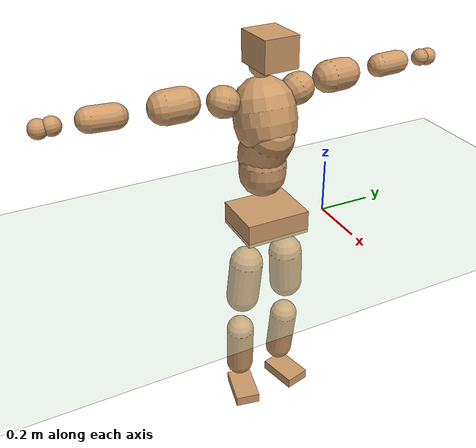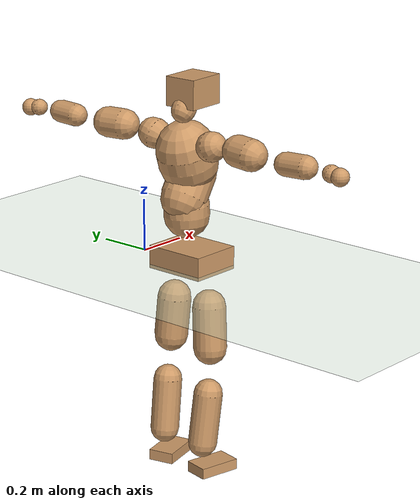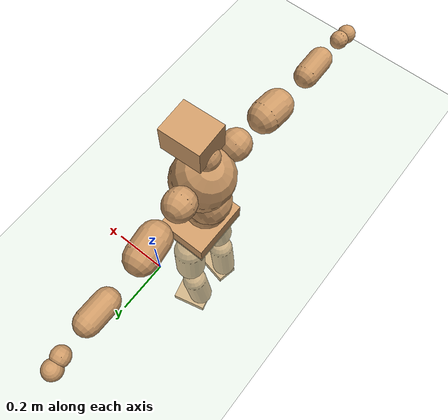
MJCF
<mujoco model="humanoid">
  <compiler coordinate="local" angle="radian"/>
  <default>
    <joint damping="0.0" armature="0.01" stiffness="0.0" limited="true"/>
    <geom conaffinity="1" condim="3" contype="7" margin="0.001" rgba="0.8 0.6 .4 1"/>
  </default>
  <asset>
    <texture type="skybox" builtin="gradient" rgb1=".4 .5 .6" rgb2="0 0 0" width="100" height="100"/>
    <texture builtin="flat" height="1278" mark="cross" markrgb="1 1 1" name="texgeom" random="0.01" rgb1="0.8 0.6 0.4" rgb2="0.8 0.6 0.4" type="cube" width="127"/>
    <texture builtin="checker" height="100" name="texplane" rgb1="0 0 0" rgb2="0.8 0.8 0.8" type="2d" width="100"/>
    <material name="MatPlane" reflectance="0.5" shininess="1" specular="1" texrepeat="60 60" texture="texplane"/>
    <material name="geom" texture="texgeom" texuniform="true"/>
  </asset>
  <worldbody>
    <light cutoff="100" diffuse="1 1 1" dir="-0 0 -1.3" directional="true" exponent="1" pos="0 0 1.3" specular=".1 .1 .1"/>
    <geom conaffinity="1" condim="3" name="floor" pos="0 0 0" rgba="0.8 0.9 0.8 1" size="100 100 .2" type="plane" material="MatPlane"/>
    <body name="Pelvis" pos="-0.0015 -0.2408 0.0412">
      <freejoint name="Pelvis"/>
      <geom type="box" contype="1" conaffinity="1" density="5359.375368" pos="-0.0050 0.0000 -0.0132" size="0.0998 0.1198 0.0435" quat="1.0000 0.0000 0.0000 -0.0013" name="Pelvis"/>
      <body name="L_Hip" pos="-0.0001 0.0784 -0.0944">
        <joint name="L_Hip_x" type="hinge" pos="0 0 0" axis="1 0 0" stiffness="1600" damping="160" armature="0.02" range="-180.0000 180.0000"/>
        <joint name="L_Hip_y" type="hinge" pos="0 0 0" axis="0 1 0" stiffness="1600" damping="160" armature="0.02" range="-180.0000 180.0000"/>
        <joint name="L_Hip_z" type="hinge" pos="0 0 0" axis="0 0 1" stiffness="1600" damping="160" armature="0.02" range="-180.0000 180.0000"/>
        <geom type="capsule" contype="1" conaffinity="1" density="2040.816327" size="0.0632" fromto="-0.0049 0.0061 -0.0929 -0.0128 0.0160 -0.2443" name="L_Hip"/>
        <body name="L_Knee" pos="-0.0177 0.0221 -0.3372">
          <joint name="L_Knee_x" type="hinge" pos="0 0 0" axis="1 0 0" stiffness="1600" damping="160" armature="0.02" range="-180.0000 180.0000"/>
          <joint name="L_Knee_y" type="hinge" pos="0 0 0" axis="0 1 0" stiffness="1600" damping="160" armature="0.02" range="-180.0000 180.0000"/>
          <joint name="L_Knee_z" type="hinge" pos="0 0 0" axis="0 0 1" stiffness="1600" damping="160" armature="0.02" range="-180.0000 180.0000"/>
          <geom type="capsule" contype="1" conaffinity="1" density="1234.567901" size="0.0542" fromto="-0.0105 -0.0026 -0.0835 -0.0349 -0.0085 -0.2775" name="L_Knee"/>
          <body name="L_Ankle" pos="-0.0454 -0.0111 -0.361">
            <joint name="L_Ankle_x" type="hinge" pos="0 0 0" axis="1 0 0" stiffness="1600" damping="160" armature="0.02" range="-180.0000 180.0000"/>
            <joint name="L_Ankle_y" type="hinge" pos="0 0 0" axis="0 1 0" stiffness="1600" damping="160" armature="0.02" range="-180.0000 180.0000"/>
            <joint name="L_Ankle_z" type="hinge" pos="0 0 0" axis="0 0 1" stiffness="1600" damping="160" armature="0.02" range="-180.0000 180.0000"/>
            <geom type="box" contype="1" conaffinity="1" density="1000.000022" pos="0.0552 0.0131 -0.0268" size="0.0784 0.0486 0.0206" quat="0.9932 0.0000 0.0000 0.1164" name="L_Ankle"/>
            <body name="L_Toe" pos="0.1104 0.0262 -0.0535">
              <joint name="L_Toe_x" type="hinge" pos="0 0 0" axis="1 0 0" stiffness="1000" damping="100" armature="0.02" range="-180.0000 180.0000"/>
              <joint name="L_Toe_y" type="hinge" pos="0 0 0" axis="0 1 0" stiffness="1000" damping="100" armature="0.02" range="-180.0000 180.0000"/>
              <joint name="L_Toe_z" type="hinge" pos="0 0 0" axis="0 0 1" stiffness="1000" damping="100" armature="0.02" range="-180.0000 180.0000"/>
              <geom type="box" contype="1" conaffinity="1" density="7623990.367008" pos="0.0000 0.0000 0.0266" size="0.0011 0.0024 0.001" quat="0.9924 0.0000 0.0000 0.1228" name="L_Toe"/>
            </body>
          </body>
        </body>
      </body>
      <body name="R_Hip" pos="0.0031 -0.0758 -0.0956">
        <joint name="R_Hip_x" type="hinge" pos="0 0 0" axis="1 0 0" stiffness="1600" damping="160" armature="0.02" range="-180.0000 180.0000"/>
        <joint name="R_Hip_y" type="hinge" pos="0 0 0" axis="0 1 0" stiffness="1600" damping="160" armature="0.02" range="-180.0000 180.0000"/>
        <joint name="R_Hip_z" type="hinge" pos="0 0 0" axis="0 0 1" stiffness="1600" damping="160" armature="0.02" range="-180.0000 180.0000"/>
        <geom type="capsule" contype="1" conaffinity="1" density="2040.816327" size="0.0625" fromto="-0.0051 -0.0080 -0.0920 -0.0138 -0.0218 -0.2511" name="R_Hip"/>
        <body name="R_Knee" pos="-0.0189 -0.0298 -0.3432">
          <joint name="R_Knee_x" type="hinge" pos="0 0 0" axis="1 0 0" stiffness="1600" damping="160" armature="0.02" range="-180.0000 180.0000"/>
          <joint name="R_Knee_y" type="hinge" pos="0 0 0" axis="0 1 0" stiffness="1600" damping="160" armature="0.02" range="-180.0000 180.0000"/>
          <joint name="R_Knee_z" type="hinge" pos="0 0 0" axis="0 0 1" stiffness="1600" damping="160" armature="0.02" range="-180.0000 180.0000"/>
          <geom type="capsule" contype="1" conaffinity="1" density="1234.567901" size="0.0543" fromto="-0.0100 0.0030 -0.0836 -0.0334 0.0100 -0.2789" name="R_Knee"/>
          <body name="R_Ankle" pos="-0.0434 0.013 -0.3625">
            <joint name="R_Ankle_x" type="hinge" pos="0 0 0" axis="1 0 0" stiffness="1600" damping="160" armature="0.02" range="-180.0000 180.0000"/>
            <joint name="R_Ankle_y" type="hinge" pos="0 0 0" axis="0 1 0" stiffness="1600" damping="160" armature="0.02" range="-180.0000 180.0000"/>
            <joint name="R_Ankle_z" type="hinge" pos="0 0 0" axis="0 0 1" stiffness="1600" damping="160" armature="0.02" range="-180.0000 180.0000"/>
            <geom type="box" contype="1" conaffinity="1" density="999.999998" pos="0.0575 -0.0117 -0.0232" size="0.0802 0.0475 0.0204" quat="0.9949 0.0000 0.0000 -0.1006" name="R_Ankle"/>
            <body name="R_Toe" pos="0.115 -0.0235 -0.0464">
              <joint name="R_Toe_x" type="hinge" pos="0 0 0" axis="1 0 0" stiffness="1000" damping="100" armature="0.02" range="-180.0000 180.0000"/>
              <joint name="R_Toe_y" type="hinge" pos="0 0 0" axis="0 1 0" stiffness="1000" damping="100" armature="0.02" range="-180.0000 180.0000"/>
              <joint name="R_Toe_z" type="hinge" pos="0 0 0" axis="0 0 1" stiffness="1000" damping="100" armature="0.02" range="-180.0000 180.0000"/>
              <geom type="box" contype="1" conaffinity="1" density="7541577.383599" pos="0.0000 0.0000 0.0251" size="0.001 0.0024 0.0011" quat="0.9959 0.0000 0.0000 -0.0907" name="R_Toe"/>
            </body>
          </body>
        </body>
      </body>
      <body name="Torso" pos="-0.0327 -0.0026 0.1106">
        <joint name="Torso_x" type="hinge" pos="0 0 0" axis="1 0 0" stiffness="2000" damping="200" armature="0.02" range="-180.0000 180.0000"/>
        <joint name="Torso_y" type="hinge" pos="0 0 0" axis="0 1 0" stiffness="2000" damping="200" armature="0.02" range="-180.0000 180.0000"/>
        <joint name="Torso_z" type="hinge" pos="0 0 0" axis="0 0 1" stiffness="2000" damping="200" armature="0.02" range="-180.0000 180.0000"/>
        <geom type="capsule" contype="1" conaffinity="1" density="2040.816327" size="0.0856" fromto="-0.0021 0.0028 0.0855 -0.0012 0.0015 0.0466" name="Torso"/>
        <body name="Spine" pos="-0.0033 0.0043 0.1321">
          <joint name="Spine_x" type="hinge" pos="0 0 0" axis="1 0 0" stiffness="2000" damping="200" armature="0.02" range="-180.0000 180.0000"/>
          <joint name="Spine_y" type="hinge" pos="0 0 0" axis="0 1 0" stiffness="2000" damping="200" armature="0.02" range="-180.0000 180.0000"/>
          <joint name="Spine_z" type="hinge" pos="0 0 0" axis="0 0 1" stiffness="2000" damping="200" armature="0.02" range="-180.0000 180.0000"/>
          <geom type="capsule" contype="1" conaffinity="1" density="2040.816327" size="0.0862" fromto="0.0478 0.0028 0.0717 -0.0122 -0.0007 -0.0183" name="Spine"/>
          <body name="Chest" pos="0.0357 0.0021 0.0535">
            <joint name="Chest_x" type="hinge" pos="0 0 0" axis="1 0 0" stiffness="2000" damping="200" armature="0.02" range="-180.0000 180.0000"/>
            <joint name="Chest_y" type="hinge" pos="0 0 0" axis="0 1 0" stiffness="2000" damping="200" armature="0.02" range="-180.0000 180.0000"/>
            <joint name="Chest_z" type="hinge" pos="0 0 0" axis="0 0 1" stiffness="2000" damping="200" armature="0.02" range="-180.0000 180.0000"/>
            <geom type="capsule" contype="1" conaffinity="1" density="2040.816327" size="0.111" fromto="-0.0347 -0.0004 0.1054 -0.0189 -0.0002 0.0575" name="Chest"/>
            <body name="Neck" pos="-0.0692 -0.0011 0.2281">
              <joint name="Neck_x" type="hinge" pos="0 0 0" axis="1 0 0" stiffness="1000" damping="100" armature="0.02" range="-180.0000 180.0000"/>
              <joint name="Neck_y" type="hinge" pos="0 0 0" axis="0 1 0" stiffness="1000" damping="100" armature="0.02" range="-180.0000 180.0000"/>
              <joint name="Neck_z" type="hinge" pos="0 0 0" axis="0 0 1" stiffness="1000" damping="100" armature="0.02" range="-180.0000 180.0000"/>
              <geom type="capsule" contype="1" conaffinity="1" density="1000" size="0.045" fromto="0.0278 0.0000 0.0354 0.0199 0.0000 0.0254" name="Neck"/>
              <body name="Head" pos="0.0477 0 0.0608">
                <joint name="Head_x" type="hinge" pos="0 0 0" axis="1 0 0" stiffness="1000" damping="100" armature="0.02" range="-180.0000 180.0000"/>
                <joint name="Head_y" type="hinge" pos="0 0 0" axis="0 1 0" stiffness="1000" damping="100" armature="0.02" range="-180.0000 180.0000"/>
                <joint name="Head_z" type="hinge" pos="0 0 0" axis="0 0 1" stiffness="1000" damping="100" armature="0.02" range="-180.0000 180.0000"/>
                <geom type="box" contype="1" conaffinity="1" density="2249.999967" pos="0.0249 0.0010 0.0314" size="0.0754 0.0627 0.0545" quat="0.9998 0.0000 0.0000 0.0205" name="Head"/>
              </body>
            </body>
            <body name="L_Thorax" pos="-0.0433 0.089 0.1317">
              <joint name="L_Thorax_x" type="hinge" pos="0 0 0" axis="1 0 0" stiffness="1000" damping="100" armature="0.02" range="-180.0000 180.0000"/>
              <joint name="L_Thorax_y" type="hinge" pos="0 0 0" axis="0 1 0" stiffness="1000" damping="100" armature="0.02" range="-180.0000 180.0000"/>
              <joint name="L_Thorax_z" type="hinge" pos="0 0 0" axis="0 0 1" stiffness="1000" damping="100" armature="0.02" range="-180.0000 180.0000"/>
              <geom type="capsule" contype="1" conaffinity="1" density="1000" size="0.0566" fromto="-0.0072 0.0537 0.0164 -0.0058 0.0437 0.0134" name="L_Thorax"/>
              <body name="L_Shoulder" pos="-0.013 0.0974 0.0298">
                <joint name="L_Shoulder_x" type="hinge" pos="0 0 0" axis="1 0 0" stiffness="1000" damping="100" armature="0.02" range="-720.0000 720.0000"/>
                <joint name="L_Shoulder_y" type="hinge" pos="0 0 0" axis="0 1 0" stiffness="1000" damping="100" armature="0.02" range="-720.0000 720.0000"/>
                <joint name="L_Shoulder_z" type="hinge" pos="0 0 0" axis="0 0 1" stiffness="1000" damping="100" armature="0.02" range="-720.0000 720.0000"/>
                <geom type="capsule" contype="1" conaffinity="1" density="1000" size="0.0573" fromto="-0.0102 0.0867 -0.0016 -0.0186 0.1579 -0.0029" name="L_Shoulder"/>
                <body name="L_Elbow" pos="-0.0288 0.2445 -0.0045">
                  <joint name="L_Elbow_x" type="hinge" pos="0 0 0" axis="1 0 0" stiffness="1000" damping="100" armature="0.02" range="-720.0000 720.0000"/>
                  <joint name="L_Elbow_y" type="hinge" pos="0 0 0" axis="0 1 0" stiffness="1000" damping="100" armature="0.02" range="-720.0000 720.0000"/>
                  <joint name="L_Elbow_z" type="hinge" pos="0 0 0" axis="0 0 1" stiffness="1000" damping="100" armature="0.02" range="-720.0000 720.0000"/>
                  <geom type="capsule" contype="1" conaffinity="1" density="1000" size="0.0425" fromto="0.0006 0.0724 0.0023 0.0013 0.1516 0.0048" name="L_Elbow"/>
                  <body name="L_Wrist" pos="0.002 0.2241 0.0071">
                    <joint name="L_Wrist_x" type="hinge" pos="0 0 0" axis="1 0 0" stiffness="600" damping="60" armature="0.02" range="-180.0000 180.0000"/>
                    <joint name="L_Wrist_y" type="hinge" pos="0 0 0" axis="0 1 0" stiffness="600" damping="60" armature="0.02" range="-180.0000 180.0000"/>
                    <joint name="L_Wrist_z" type="hinge" pos="0 0 0" axis="0 0 1" stiffness="600" damping="60" armature="0.02" range="-180.0000 180.0000"/>
                    <geom type="capsule" contype="1" conaffinity="1" density="1000" size="0.0311" fromto="-0.0062 0.0391 -0.0046 -0.0065 0.0411 -0.0048" name="L_Wrist"/>
                    <body name="L_Hand" pos="-0.0127 0.0801 -0.0094">
                      <joint name="L_Hand_x" type="hinge" pos="0 0 0" axis="1 0 0" stiffness="600" damping="60" armature="0.02" range="-180.0000 180.0000"/>
                      <joint name="L_Hand_y" type="hinge" pos="0 0 0" axis="0 1 0" stiffness="600" damping="60" armature="0.02" range="-180.0000 180.0000"/>
                      <joint name="L_Hand_z" type="hinge" pos="0 0 0" axis="0 0 1" stiffness="600" damping="60" armature="0.02" range="-180.0000 180.0000"/>
                      <geom type="sphere" contype="1" conaffinity="1" density="1000" size="0.0325" pos="0.0000 0.0000 0.0000" name="L_Hand"/>
                    </body>
                  </body>
                </body>
              </body>
            </body>
            <body name="R_Thorax" pos="-0.0484 -0.09 0.1288">
              <joint name="R_Thorax_x" type="hinge" pos="0 0 0" axis="1 0 0" stiffness="1000" damping="100" armature="0.02" range="-180.0000 180.0000"/>
              <joint name="R_Thorax_y" type="hinge" pos="0 0 0" axis="0 1 0" stiffness="1000" damping="100" armature="0.02" range="-180.0000 180.0000"/>
              <joint name="R_Thorax_z" type="hinge" pos="0 0 0" axis="0 0 1" stiffness="1000" damping="100" armature="0.02" range="-180.0000 180.0000"/>
              <geom type="capsule" contype="1" conaffinity="1" density="1000" size="0.0554" fromto="-0.0078 -0.0522 0.0167 -0.0071 -0.0474 0.0151" name="R_Thorax"/>
              <body name="R_Shoulder" pos="-0.0148 -0.0997 0.0318">
                <joint name="R_Shoulder_x" type="hinge" pos="0 0 0" axis="1 0 0" stiffness="1000" damping="100" armature="0.02" range="-720.0000 720.0000"/>
                <joint name="R_Shoulder_y" type="hinge" pos="0 0 0" axis="0 1 0" stiffness="1000" damping="100" armature="0.02" range="-720.0000 720.0000"/>
                <joint name="R_Shoulder_z" type="hinge" pos="0 0 0" axis="0 0 1" stiffness="1000" damping="100" armature="0.02" range="-720.0000 720.0000"/>
                <geom type="capsule" contype="1" conaffinity="1" density="1000" size="0.0585" fromto="-0.0078 -0.0881 -0.0037 -0.0133 -0.1501 -0.0063" name="R_Shoulder"/>
                <body name="R_Elbow" pos="-0.0212 -0.2382 -0.01">
                  <joint name="R_Elbow_x" type="hinge" pos="0 0 0" axis="1 0 0" stiffness="1000" damping="100" armature="0.02" range="-720.0000 720.0000"/>
                  <joint name="R_Elbow_y" type="hinge" pos="0 0 0" axis="0 1 0" stiffness="1000" damping="100" armature="0.02" range="-720.0000 720.0000"/>
                  <joint name="R_Elbow_z" type="hinge" pos="0 0 0" axis="0 0 1" stiffness="1000" damping="100" armature="0.02" range="-720.0000 720.0000"/>
                  <geom type="capsule" contype="1" conaffinity="1" density="1000" size="0.0428" fromto="0.0001 -0.0727 0.0035 0.0002 -0.1572 0.0075" name="R_Elbow"/>
                  <body name="R_Wrist" pos="0.0002 -0.2299 0.011">
                    <joint name="R_Wrist_x" type="hinge" pos="0 0 0" axis="1 0 0" stiffness="600" damping="60" armature="0.02" range="-180.0000 180.0000"/>
                    <joint name="R_Wrist_y" type="hinge" pos="0 0 0" axis="0 1 0" stiffness="600" damping="60" armature="0.02" range="-180.0000 180.0000"/>
                    <joint name="R_Wrist_z" type="hinge" pos="0 0 0" axis="0 0 1" stiffness="600" damping="60" armature="0.02" range="-180.0000 180.0000"/>
                    <geom type="capsule" contype="1" conaffinity="1" density="1000" size="0.0315" fromto="-0.0050 -0.0389 -0.0034 -0.0052 -0.0409 -0.0036" name="R_Wrist"/>
                    <body name="R_Hand" pos="-0.0102 -0.0799 -0.0071">
                      <joint name="R_Hand_x" type="hinge" pos="0 0 0" axis="1 0 0" stiffness="600" damping="60" armature="0.02" range="-180.0000 180.0000"/>
                      <joint name="R_Hand_y" type="hinge" pos="0 0 0" axis="0 1 0" stiffness="600" damping="60" armature="0.02" range="-180.0000 180.0000"/>
                      <joint name="R_Hand_z" type="hinge" pos="0 0 0" axis="0 0 1" stiffness="600" damping="60" armature="0.02" range="-180.0000 180.0000"/>
                      <geom type="sphere" contype="1" conaffinity="1" density="1000" size="0.0324" pos="0.0000 0.0000 0.0000" name="R_Hand"/>
                    </body>
                  </body>
                </body>
              </body>
            </body>
          </body>
        </body>
      </body>
    </body>
  </worldbody>
  <actuator>
    <motor name="L_Hip_x" joint="L_Hip_x" gear="500"/>
    <motor name="L_Hip_y" joint="L_Hip_y" gear="500"/>
    <motor name="L_Hip_z" joint="L_Hip_z" gear="500"/>
    <motor name="L_Knee_x" joint="L_Knee_x" gear="500"/>
    <motor name="L_Knee_y" joint="L_Knee_y" gear="500"/>
    <motor name="L_Knee_z" joint="L_Knee_z" gear="500"/>
    <motor name="L_Ankle_x" joint="L_Ankle_x" gear="500"/>
    <motor name="L_Ankle_y" joint="L_Ankle_y" gear="500"/>
    <motor name="L_Ankle_z" joint="L_Ankle_z" gear="500"/>
    <motor name="L_Toe_x" joint="L_Toe_x" gear="500"/>
    <motor name="L_Toe_y" joint="L_Toe_y" gear="500"/>
    <motor name="L_Toe_z" joint="L_Toe_z" gear="500"/>
    <motor name="R_Hip_x" joint="R_Hip_x" gear="500"/>
    <motor name="R_Hip_y" joint="R_Hip_y" gear="500"/>
    <motor name="R_Hip_z" joint="R_Hip_z" gear="500"/>
    <motor name="R_Knee_x" joint="R_Knee_x" gear="500"/>
    <motor name="R_Knee_y" joint="R_Knee_y" gear="500"/>
    <motor name="R_Knee_z" joint="R_Knee_z" gear="500"/>
    <motor name="R_Ankle_x" joint="R_Ankle_x" gear="500"/>
    <motor name="R_Ankle_y" joint="R_Ankle_y" gear="500"/>
    <motor name="R_Ankle_z" joint="R_Ankle_z" gear="500"/>
    <motor name="R_Toe_x" joint="R_Toe_x" gear="500"/>
    <motor name="R_Toe_y" joint="R_Toe_y" gear="500"/>
    <motor name="R_Toe_z" joint="R_Toe_z" gear="500"/>
    <motor name="Torso_x" joint="Torso_x" gear="500"/>
    <motor name="Torso_y" joint="Torso_y" gear="500"/>
    <motor name="Torso_z" joint="Torso_z" gear="500"/>
    <motor name="Spine_x" joint="Spine_x" gear="500"/>
    <motor name="Spine_y" joint="Spine_y" gear="500"/>
    <motor name="Spine_z" joint="Spine_z" gear="500"/>
    <motor name="Chest_x" joint="Chest_x" gear="500"/>
    <motor name="Chest_y" joint="Chest_y" gear="500"/>
    <motor name="Chest_z" joint="Chest_z" gear="500"/>
    <motor name="Neck_x" joint="Neck_x" gear="500"/>
    <motor name="Neck_y" joint="Neck_y" gear="500"/>
    <motor name="Neck_z" joint="Neck_z" gear="500"/>
    <motor name="Head_x" joint="Head_x" gear="500"/>
    <motor name="Head_y" joint="Head_y" gear="500"/>
    <motor name="Head_z" joint="Head_z" gear="500"/>
    <motor name="L_Thorax_x" joint="L_Thorax_x" gear="500"/>
    <motor name="L_Thorax_y" joint="L_Thorax_y" gear="500"/>
    <motor name="L_Thorax_z" joint="L_Thorax_z" gear="500"/>
    <motor name="L_Shoulder_x" joint="L_Shoulder_x" gear="500"/>
    <motor name="L_Shoulder_y" joint="L_Shoulder_y" gear="500"/>
    <motor name="L_Shoulder_z" joint="L_Shoulder_z" gear="500"/>
    <motor name="L_Elbow_x" joint="L_Elbow_x" gear="500"/>
    <motor name="L_Elbow_y" joint="L_Elbow_y" gear="500"/>
    <motor name="L_Elbow_z" joint="L_Elbow_z" gear="500"/>
    <motor name="L_Wrist_x" joint="L_Wrist_x" gear="500"/>
    <motor name="L_Wrist_y" joint="L_Wrist_y" gear="500"/>
    <motor name="L_Wrist_z" joint="L_Wrist_z" gear="500"/>
    <motor name="L_Hand_x" joint="L_Hand_x" gear="500"/>
    <motor name="L_Hand_y" joint="L_Hand_y" gear="500"/>
    <motor name="L_Hand_z" joint="L_Hand_z" gear="500"/>
    <motor name="R_Thorax_x" joint="R_Thorax_x" gear="500"/>
    <motor name="R_Thorax_y" joint="R_Thorax_y" gear="500"/>
    <motor name="R_Thorax_z" joint="R_Thorax_z" gear="500"/>
    <motor name="R_Shoulder_x" joint="R_Shoulder_x" gear="500"/>
    <motor name="R_Shoulder_y" joint="R_Shoulder_y" gear="500"/>
    <motor name="R_Shoulder_z" joint="R_Shoulder_z" gear="500"/>
    <motor name="R_Elbow_x" joint="R_Elbow_x" gear="500"/>
    <motor name="R_Elbow_y" joint="R_Elbow_y" gear="500"/>
    <motor name="R_Elbow_z" joint="R_Elbow_z" gear="500"/>
    <motor name="R_Wrist_x" joint="R_Wrist_x" gear="500"/>
    <motor name="R_Wrist_y" joint="R_Wrist_y" gear="500"/>
    <motor name="R_Wrist_z" joint="R_Wrist_z" gear="500"/>
    <motor name="R_Hand_x" joint="R_Hand_x" gear="500"/>
    <motor name="R_Hand_y" joint="R_Hand_y" gear="500"/>
    <motor name="R_Hand_z" joint="R_Hand_z" gear="500"/>
  </actuator>
  <contact>
    <exclude body1="Torso" body2="Chest"/>
    <exclude body1="Head" body2="Chest"/>
    <exclude body1="R_Knee" body2="R_Toe"/>
    <exclude body1="R_Knee" body2="L_Ankle"/>
    <exclude body1="R_Knee" body2="L_Toe"/>
    <exclude body1="L_Knee" body2="L_Toe"/>
    <exclude body1="L_Knee" body2="R_Ankle"/>
    <exclude body1="L_Knee" body2="R_Toe"/>
    <exclude body1="L_Shoulder" body2="Chest"/>
    <exclude body1="R_Shoulder" body2="Chest"/>
  </contact>
  <sensor/>
  <size njmax="700" nconmax="700"/>
</mujoco>
